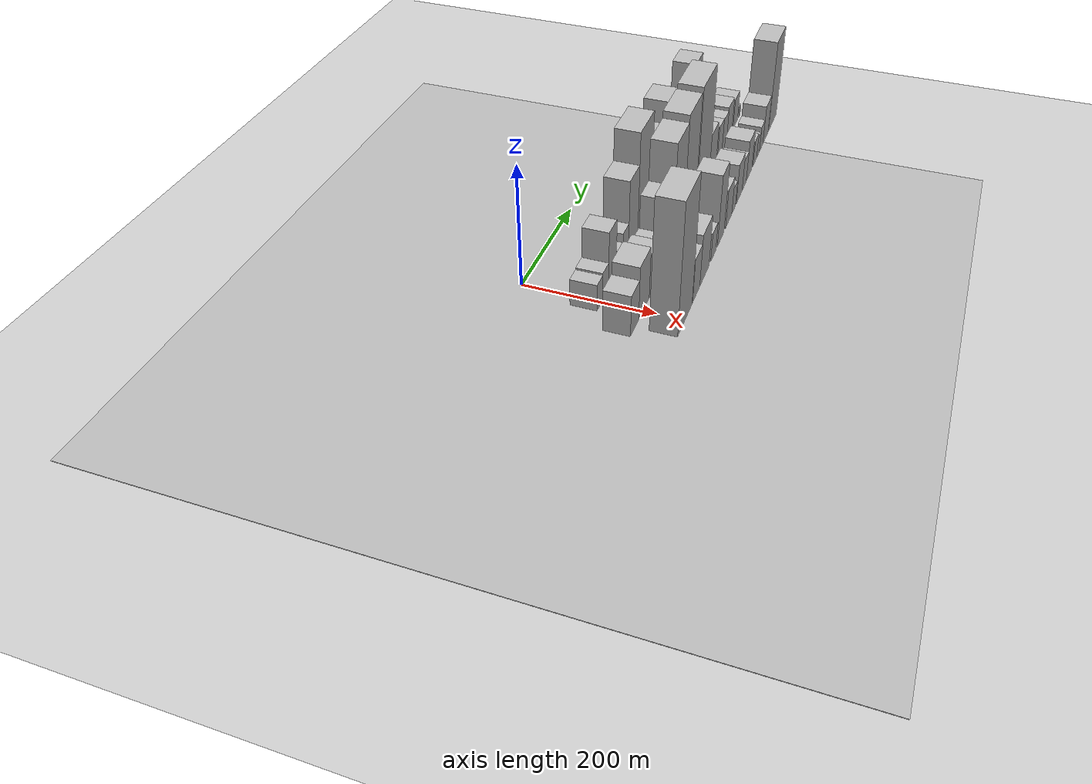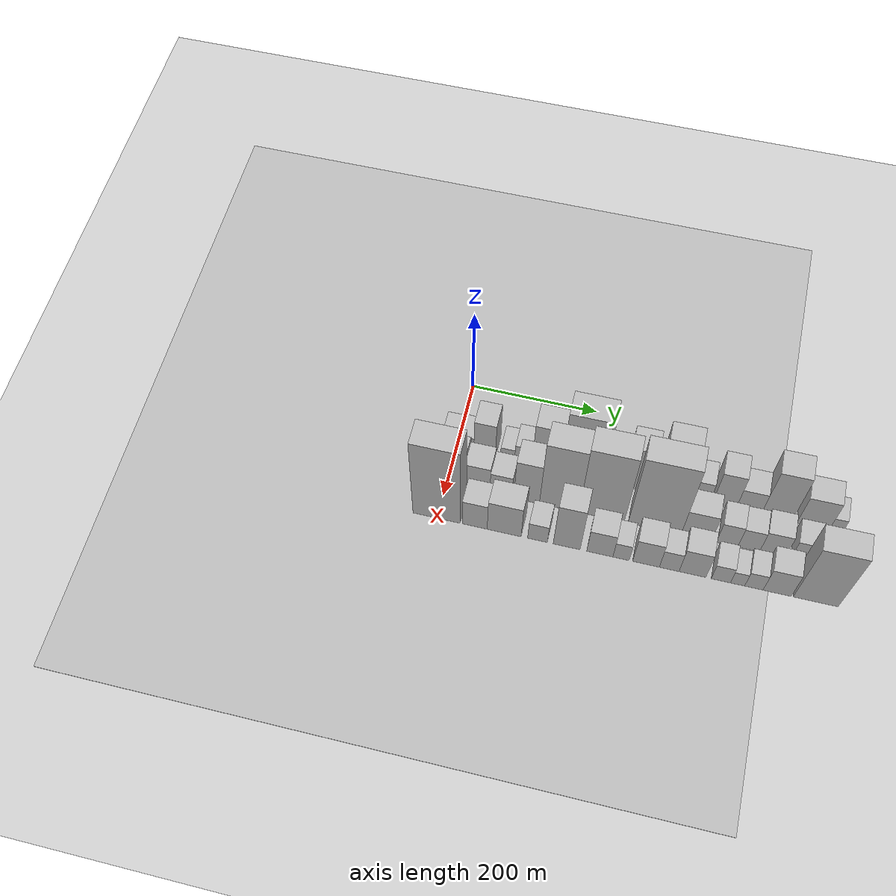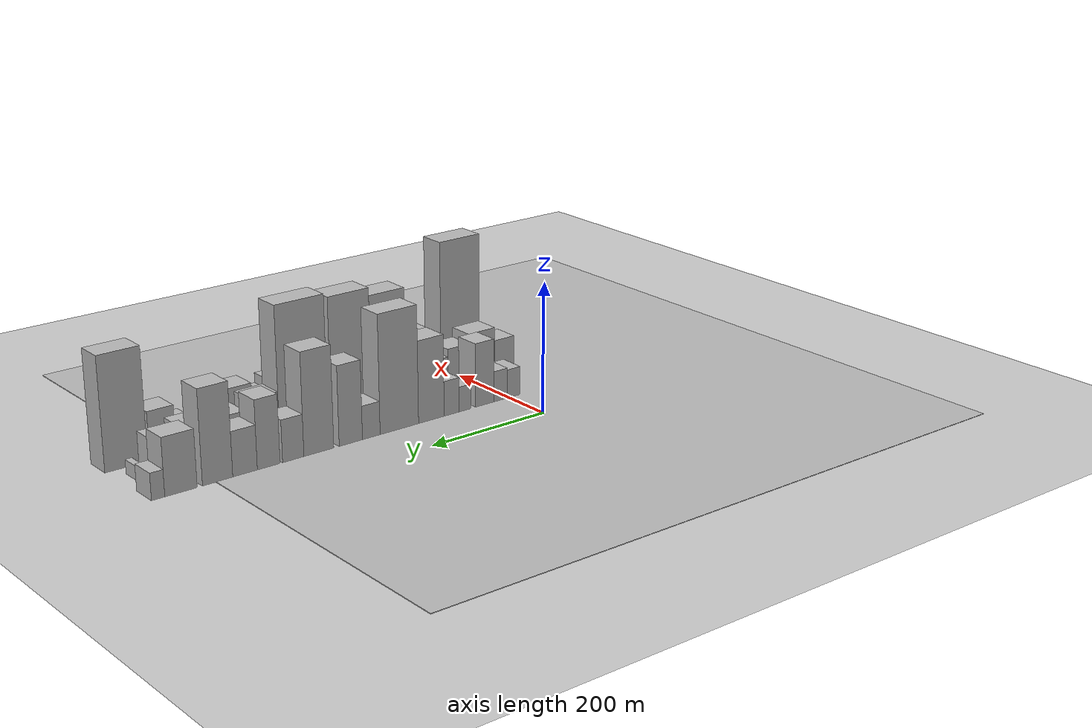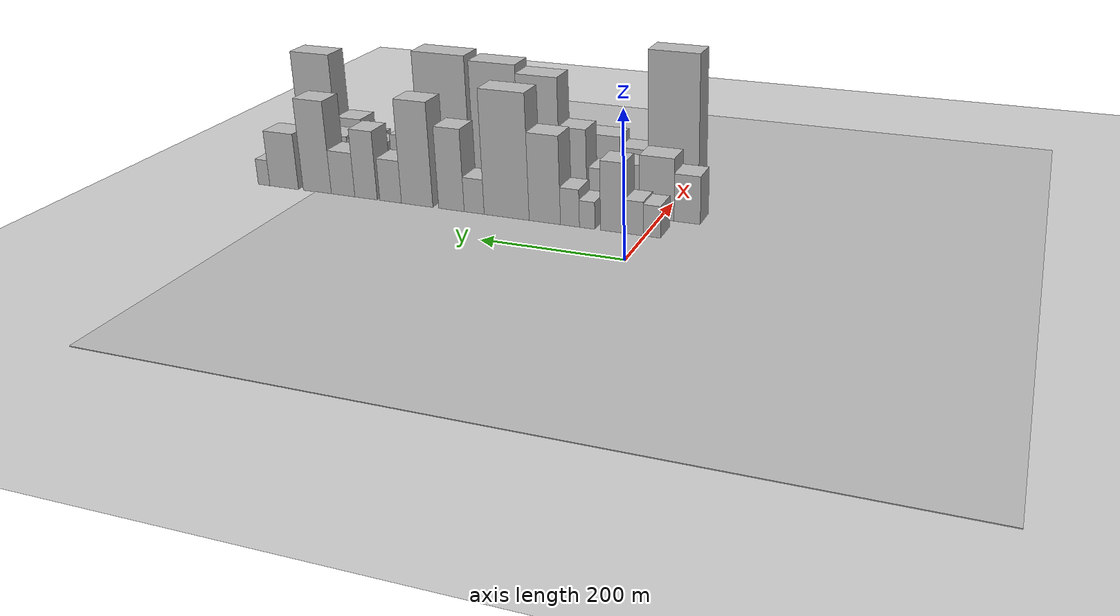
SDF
<sdf version="1.6">
 <world name="default">
  <include><name>ground_plane_1</name><uri>model://HANNAS_ground_plane</uri></include>
  <include>
   <name>ground_plane_2</name>
   <uri>model://HANNAS_ground_plane</uri>
   <pose>100 0 0  0 0 0</pose>
  </include>
  <model name="building_17">
   <static>1</static>
   <pose>100.0000 -9.2193 0 0.000000 0.000000 0.000000</pose>
   <link name="link">
    <pose>0 0 22.50 0 0 0</pose>
    <collision name="collision"><geometry><box><size>40.0000 24.1911 45.0000</size></box></geometry></collision>
    <visual name="visual">
     <cast_shadows>0</cast_shadows>
     <geometry><box><size>40.0000 24.1911 45.0000</size></box></geometry>
     <material>
      <script>
       <uri>model://HANNAS_wall/materials/scripts</uri>
       <uri>model://HANNAS_wall/materials/textures</uri>
       <name>vrc/HANNAS_wall</name>
      </script>
     </material>
    </visual>
   </link>
  </model>
  <model name="building_18">
   <static>1</static>
   <pose>100.0000 15.7469 0 0.000000 0.000000 0.000000</pose>
   <link name="link">
    <pose>0 0 24.00 0 0 0</pose>
    <collision name="collision"><geometry><box><size>40.0000 25.7412 48.0000</size></box></geometry></collision>
    <visual name="visual">
     <cast_shadows>0</cast_shadows>
     <geometry><box><size>40.0000 25.7412 48.0000</size></box></geometry>
     <material>
      <script>
       <uri>model://HANNAS_wall/materials/scripts</uri>
       <uri>model://HANNAS_wall/materials/textures</uri>
       <name>vrc/HANNAS_wall</name>
      </script>
     </material>
    </visual>
   </link>
  </model>
  <model name="building_19">
   <static>1</static>
   <pose>100.0000 45.7163 0 0.000000 0.000000 0.000000</pose>
   <link name="link">
    <pose>0 0 49.50 0 0 0</pose>
    <collision name="collision"><geometry><box><size>40.0000 34.1975 99.0000</size></box></geometry></collision>
    <visual name="visual">
     <cast_shadows>0</cast_shadows>
     <geometry><box><size>40.0000 34.1975 99.0000</size></box></geometry>
     <material>
      <script>
       <uri>model://HANNAS_wall/materials/scripts</uri>
       <uri>model://HANNAS_wall/materials/textures</uri>
       <name>vrc/HANNAS_wall</name>
      </script>
     </material>
    </visual>
   </link>
  </model>
  <model name="building_20">
   <static>1</static>
   <pose>100.0000 81.9478 0 0.000000 0.000000 0.000000</pose>
   <link name="link">
    <pose>0 0 19.50 0 0 0</pose>
    <collision name="collision"><geometry><box><size>40.0000 22.2656 39.0000</size></box></geometry></collision>
    <visual name="visual">
     <cast_shadows>0</cast_shadows>
     <geometry><box><size>40.0000 22.2656 39.0000</size></box></geometry>
     <material>
      <script>
       <uri>model://HANNAS_wall/materials/scripts</uri>
       <uri>model://HANNAS_wall/materials/textures</uri>
       <name>vrc/HANNAS_wall</name>
      </script>
     </material>
    </visual>
   </link>
  </model>
  <model name="building_21">
   <static>1</static>
   <pose>100.0000 106.7614 0 0.000000 0.000000 0.000000</pose>
   <link name="link">
    <pose>0 0 27.00 0 0 0</pose>
    <collision name="collision"><geometry><box><size>40.0000 27.3615 54.0000</size></box></geometry></collision>
    <visual name="visual">
     <cast_shadows>0</cast_shadows>
     <geometry><box><size>40.0000 27.3615 54.0000</size></box></geometry>
     <material>
      <script>
       <uri>model://HANNAS_wall/materials/scripts</uri>
       <uri>model://HANNAS_wall/materials/textures</uri>
       <name>vrc/HANNAS_wall</name>
      </script>
     </material>
    </visual>
   </link>
  </model>
  <model name="building_22">
   <static>1</static>
   <pose>100.0000 143.3555 0 0.000000 0.000000 0.000000</pose>
   <link name="link">
    <pose>0 0 63.00 0 0 0</pose>
    <collision name="collision"><geometry><box><size>40.0000 45.8266 126.0000</size></box></geometry></collision>
    <visual name="visual">
     <cast_shadows>0</cast_shadows>
     <geometry><box><size>40.0000 45.8266 126.0000</size></box></geometry>
     <material>
      <script>
       <uri>model://HANNAS_wall/materials/scripts</uri>
       <uri>model://HANNAS_wall/materials/textures</uri>
       <name>vrc/HANNAS_wall</name>
      </script>
     </material>
    </visual>
   </link>
  </model>
  <model name="building_23">
   <static>1</static>
   <pose>100.0000 199.9221 0 0.000000 0.000000 0.000000</pose>
   <link name="link">
    <pose>0 0 90.00 0 0 0</pose>
    <collision name="collision"><geometry><box><size>40.0000 67.3065 180.0000</size></box></geometry></collision>
    <visual name="visual">
     <cast_shadows>0</cast_shadows>
     <geometry><box><size>40.0000 67.3065 180.0000</size></box></geometry>
     <material>
      <script>
       <uri>model://HANNAS_wall/materials/scripts</uri>
       <uri>model://HANNAS_wall/materials/textures</uri>
       <name>vrc/HANNAS_wall</name>
      </script>
     </material>
    </visual>
   </link>
  </model>
  <model name="building_24">
   <static>1</static>
   <pose>100.0000 248.7436 0 0.000000 0.000000 0.000000</pose>
   <link name="link">
    <pose>0 0 25.50 0 0 0</pose>
    <collision name="collision"><geometry><box><size>40.0000 30.3366 51.0000</size></box></geometry></collision>
    <visual name="visual">
     <cast_shadows>0</cast_shadows>
     <geometry><box><size>40.0000 30.3366 51.0000</size></box></geometry>
     <material>
      <script>
       <uri>model://HANNAS_wall/materials/scripts</uri>
       <uri>model://HANNAS_wall/materials/textures</uri>
       <name>vrc/HANNAS_wall</name>
      </script>
     </material>
    </visual>
   </link>
  </model>
  <model name="building_25">
   <static>1</static>
   <pose>100.0000 283.5443 0 0.000000 0.000000 0.000000</pose>
   <link name="link">
    <pose>0 0 60.00 0 0 0</pose>
    <collision name="collision"><geometry><box><size>40.0000 39.2648 120.0000</size></box></geometry></collision>
    <visual name="visual">
     <cast_shadows>0</cast_shadows>
     <geometry><box><size>40.0000 39.2648 120.0000</size></box></geometry>
     <material>
      <script>
       <uri>model://HANNAS_wall/materials/scripts</uri>
       <uri>model://HANNAS_wall/materials/textures</uri>
       <name>vrc/HANNAS_wall</name>
      </script>
     </material>
    </visual>
   </link>
  </model>
  <model name="building_26">
   <static>1</static>
   <pose>100.0000 336.8091 0 0.000000 0.000000 0.000000</pose>
   <link name="link">
    <pose>0 0 76.50 0 0 0</pose>
    <collision name="collision"><geometry><box><size>40.0000 49.2648 153.0000</size></box></geometry></collision>
    <visual name="visual">
     <cast_shadows>0</cast_shadows>
     <geometry><box><size>40.0000 49.2648 153.0000</size></box></geometry>
     <material>
      <script>
       <uri>model://HANNAS_wall/materials/scripts</uri>
       <uri>model://HANNAS_wall/materials/textures</uri>
       <name>vrc/HANNAS_wall</name>
      </script>
     </material>
    </visual>
   </link>
  </model>
  <model name="building_27">
   <static>1</static>
   <pose>100.0000 378.6815 0 0.000000 0.000000 0.000000</pose>
   <link name="link">
    <pose>0 0 31.50 0 0 0</pose>
    <collision name="collision"><geometry><box><size>40.0000 34.4800 63.0000</size></box></geometry></collision>
    <visual name="visual">
     <cast_shadows>0</cast_shadows>
     <geometry><box><size>40.0000 34.4800 63.0000</size></box></geometry>
     <material>
      <script>
       <uri>model://HANNAS_wall/materials/scripts</uri>
       <uri>model://HANNAS_wall/materials/textures</uri>
       <name>vrc/HANNAS_wall</name>
      </script>
     </material>
    </visual>
   </link>
  </model>
  <model name="building_28">
   <static>1</static>
   <pose>100.0000 417.9894 0 0.000000 0.000000 0.000000</pose>
   <link name="link">
    <pose>0 0 51.00 0 0 0</pose>
    <collision name="collision"><geometry><box><size>40.0000 36.1358 102.0000</size></box></geometry></collision>
    <visual name="visual">
     <cast_shadows>0</cast_shadows>
     <geometry><box><size>40.0000 36.1358 102.0000</size></box></geometry>
     <material>
      <script>
       <uri>model://HANNAS_wall/materials/scripts</uri>
       <uri>model://HANNAS_wall/materials/textures</uri>
       <name>vrc/HANNAS_wall</name>
      </script>
     </material>
    </visual>
   </link>
  </model>
  <model name="building_29">
   <static>1</static>
   <pose>100.0000 455.2565 0 0.000000 0.000000 0.000000</pose>
   <link name="link">
    <pose>0 0 33.00 0 0 0</pose>
    <collision name="collision"><geometry><box><size>40.0000 38.3985 66.0000</size></box></geometry></collision>
    <visual name="visual">
     <cast_shadows>0</cast_shadows>
     <geometry><box><size>40.0000 38.3985 66.0000</size></box></geometry>
     <material>
      <script>
       <uri>model://HANNAS_wall/materials/scripts</uri>
       <uri>model://HANNAS_wall/materials/textures</uri>
       <name>vrc/HANNAS_wall</name>
      </script>
     </material>
    </visual>
   </link>
  </model>
  <model name="building_30">
   <static>1</static>
   <pose>100.0000 497.6974 0 0.000000 0.000000 0.000000</pose>
   <link name="link">
    <pose>0 0 69.00 0 0 0</pose>
    <collision name="collision"><geometry><box><size>40.0000 46.4833 138.0000</size></box></geometry></collision>
    <visual name="visual">
     <cast_shadows>0</cast_shadows>
     <geometry><box><size>40.0000 46.4833 138.0000</size></box></geometry>
     <material>
      <script>
       <uri>model://HANNAS_wall/materials/scripts</uri>
       <uri>model://HANNAS_wall/materials/textures</uri>
       <name>vrc/HANNAS_wall</name>
      </script>
     </material>
    </visual>
   </link>
  </model>
  <model name="building_31">
   <static>1</static>
   <pose>100.0000 553.1227 0 0.000000 0.000000 0.000000</pose>
   <link name="link">
    <pose>0 0 42.00 0 0 0</pose>
    <collision name="collision"><geometry><box><size>40.0000 48.3673 84.0000</size></box></geometry></collision>
    <visual name="visual">
     <cast_shadows>0</cast_shadows>
     <geometry><box><size>40.0000 48.3673 84.0000</size></box></geometry>
     <material>
      <script>
       <uri>model://HANNAS_wall/materials/scripts</uri>
       <uri>model://HANNAS_wall/materials/textures</uri>
       <name>vrc/HANNAS_wall</name>
      </script>
     </material>
    </visual>
   </link>
  </model>
  <model name="building_32">
   <static>1</static>
   <pose>100.0000 587.1421 0 0.000000 0.000000 0.000000</pose>
   <link name="link">
    <pose>0 0 19.50 0 0 0</pose>
    <collision name="collision"><geometry><box><size>40.0000 19.6715 39.0000</size></box></geometry></collision>
    <visual name="visual">
     <cast_shadows>0</cast_shadows>
     <geometry><box><size>40.0000 19.6715 39.0000</size></box></geometry>
     <material>
      <script>
       <uri>model://HANNAS_wall/materials/scripts</uri>
       <uri>model://HANNAS_wall/materials/textures</uri>
       <name>vrc/HANNAS_wall</name>
      </script>
     </material>
    </visual>
   </link>
  </model>
  <model name="building_46">
   <static>1</static>
   <pose>160.0000 -39.2891 0 0.000000 0.000000 0.000000</pose>
   <link name="link">
    <pose>0 0 34.50 0 0 0</pose>
    <collision name="collision"><geometry><box><size>40.0000 36.9468 69.0000</size></box></geometry></collision>
    <visual name="visual">
     <cast_shadows>0</cast_shadows>
     <geometry><box><size>40.0000 36.9468 69.0000</size></box></geometry>
     <material>
      <script>
       <uri>model://HANNAS_wall/materials/scripts</uri>
       <uri>model://HANNAS_wall/materials/textures</uri>
       <name>vrc/HANNAS_wall</name>
      </script>
     </material>
    </visual>
   </link>
  </model>
  <model name="building_47">
   <static>1</static>
   <pose>160.0000 3.8355 0 0.000000 0.000000 0.000000</pose>
   <link name="link">
    <pose>0 0 45.00 0 0 0</pose>
    <collision name="collision"><geometry><box><size>40.0000 49.3026 90.0000</size></box></geometry></collision>
    <visual name="visual">
     <cast_shadows>0</cast_shadows>
     <geometry><box><size>40.0000 49.3026 90.0000</size></box></geometry>
     <material>
      <script>
       <uri>model://HANNAS_wall/materials/scripts</uri>
       <uri>model://HANNAS_wall/materials/textures</uri>
       <name>vrc/HANNAS_wall</name>
      </script>
     </material>
    </visual>
   </link>
  </model>
  <model name="building_48">
   <static>1</static>
   <pose>160.0000 48.2346 0 0.000000 0.000000 0.000000</pose>
   <link name="link">
    <pose>0 0 37.50 0 0 0</pose>
    <collision name="collision"><geometry><box><size>40.0000 39.4956 75.0000</size></box></geometry></collision>
    <visual name="visual">
     <cast_shadows>0</cast_shadows>
     <geometry><box><size>40.0000 39.4956 75.0000</size></box></geometry>
     <material>
      <script>
       <uri>model://HANNAS_wall/materials/scripts</uri>
       <uri>model://HANNAS_wall/materials/textures</uri>
       <name>vrc/HANNAS_wall</name>
      </script>
     </material>
    </visual>
   </link>
  </model>
  <model name="building_49">
   <static>1</static>
   <pose>160.0000 85.1617 0 0.000000 0.000000 0.000000</pose>
   <link name="link">
    <pose>0 0 31.50 0 0 0</pose>
    <collision name="collision"><geometry><box><size>40.0000 34.3585 63.0000</size></box></geometry></collision>
    <visual name="visual">
     <cast_shadows>0</cast_shadows>
     <geometry><box><size>40.0000 34.3585 63.0000</size></box></geometry>
     <material>
      <script>
       <uri>model://HANNAS_wall/materials/scripts</uri>
       <uri>model://HANNAS_wall/materials/textures</uri>
       <name>vrc/HANNAS_wall</name>
      </script>
     </material>
    </visual>
   </link>
  </model>
  <model name="building_50">
   <static>1</static>
   <pose>160.0000 125.2696 0 0.000000 0.000000 0.000000</pose>
   <link name="link">
    <pose>0 0 58.50 0 0 0</pose>
    <collision name="collision"><geometry><box><size>40.0000 39.8573 117.0000</size></box></geometry></collision>
    <visual name="visual">
     <cast_shadows>0</cast_shadows>
     <geometry><box><size>40.0000 39.8573 117.0000</size></box></geometry>
     <material>
      <script>
       <uri>model://HANNAS_wall/materials/scripts</uri>
       <uri>model://HANNAS_wall/materials/textures</uri>
       <name>vrc/HANNAS_wall</name>
      </script>
     </material>
    </visual>
   </link>
  </model>
  <model name="building_51">
   <static>1</static>
   <pose>160.0000 175.7188 0 0.000000 0.000000 0.000000</pose>
   <link name="link">
    <pose>0 0 93.00 0 0 0</pose>
    <collision name="collision"><geometry><box><size>40.0000 61.0412 186.0000</size></box></geometry></collision>
    <visual name="visual">
     <cast_shadows>0</cast_shadows>
     <geometry><box><size>40.0000 61.0412 186.0000</size></box></geometry>
     <material>
      <script>
       <uri>model://HANNAS_wall/materials/scripts</uri>
       <uri>model://HANNAS_wall/materials/textures</uri>
       <name>vrc/HANNAS_wall</name>
      </script>
     </material>
    </visual>
   </link>
  </model>
  <model name="building_52">
   <static>1</static>
   <pose>160.0000 240.9977 0 0.000000 0.000000 0.000000</pose>
   <link name="link">
    <pose>0 0 99.00 0 0 0</pose>
    <collision name="collision"><geometry><box><size>40.0000 69.5166 198.0000</size></box></geometry></collision>
    <visual name="visual">
     <cast_shadows>0</cast_shadows>
     <geometry><box><size>40.0000 69.5166 198.0000</size></box></geometry>
     <material>
      <script>
       <uri>model://HANNAS_wall/materials/scripts</uri>
       <uri>model://HANNAS_wall/materials/textures</uri>
       <name>vrc/HANNAS_wall</name>
      </script>
     </material>
    </visual>
   </link>
  </model>
  <model name="building_53">
   <static>1</static>
   <pose>160.0000 322.0239 0 0.000000 0.000000 0.000000</pose>
   <link name="link">
    <pose>0 0 102.00 0 0 0</pose>
    <collision name="collision"><geometry><box><size>40.0000 80.5359 204.0000</size></box></geometry></collision>
    <visual name="visual">
     <cast_shadows>0</cast_shadows>
     <geometry><box><size>40.0000 80.5359 204.0000</size></box></geometry>
     <material>
      <script>
       <uri>model://HANNAS_wall/materials/scripts</uri>
       <uri>model://HANNAS_wall/materials/textures</uri>
       <name>vrc/HANNAS_wall</name>
      </script>
     </material>
    </visual>
   </link>
  </model>
  <model name="building_54">
   <static>1</static>
   <pose>160.0000 385.2030 0 0.000000 0.000000 0.000000</pose>
   <link name="link">
    <pose>0 0 39.00 0 0 0</pose>
    <collision name="collision"><geometry><box><size>40.0000 45.8222 78.0000</size></box></geometry></collision>
    <visual name="visual">
     <cast_shadows>0</cast_shadows>
     <geometry><box><size>40.0000 45.8222 78.0000</size></box></geometry>
     <material>
      <script>
       <uri>model://HANNAS_wall/materials/scripts</uri>
       <uri>model://HANNAS_wall/materials/textures</uri>
       <name>vrc/HANNAS_wall</name>
      </script>
     </material>
    </visual>
   </link>
  </model>
  <model name="building_55">
   <static>1</static>
   <pose>160.0000 411.7344 0 0.000000 0.000000 0.000000</pose>
   <link name="link">
    <pose>0 0 9.00 0 0 0</pose>
    <collision name="collision"><geometry><box><size>40.0000 7.2406 18.0000</size></box></geometry></collision>
    <visual name="visual">
     <cast_shadows>0</cast_shadows>
     <geometry><box><size>40.0000 7.2406 18.0000</size></box></geometry>
     <material>
      <script>
       <uri>model://HANNAS_wall/materials/scripts</uri>
       <uri>model://HANNAS_wall/materials/textures</uri>
       <name>vrc/HANNAS_wall</name>
      </script>
     </material>
    </visual>
   </link>
  </model>
  <model name="building_56">
   <static>1</static>
   <pose>160.0000 431.4863 0 0.000000 0.000000 0.000000</pose>
   <link name="link">
    <pose>0 0 31.50 0 0 0</pose>
    <collision name="collision"><geometry><box><size>40.0000 32.2633 63.0000</size></box></geometry></collision>
    <visual name="visual">
     <cast_shadows>0</cast_shadows>
     <geometry><box><size>40.0000 32.2633 63.0000</size></box></geometry>
     <material>
      <script>
       <uri>model://HANNAS_wall/materials/scripts</uri>
       <uri>model://HANNAS_wall/materials/textures</uri>
       <name>vrc/HANNAS_wall</name>
      </script>
     </material>
    </visual>
   </link>
  </model>
  <model name="building_57">
   <static>1</static>
   <pose>160.0000 463.8611 0 0.000000 0.000000 0.000000</pose>
   <link name="link">
    <pose>0 0 30.00 0 0 0</pose>
    <collision name="collision"><geometry><box><size>40.0000 32.4863 60.0000</size></box></geometry></collision>
    <visual name="visual">
     <cast_shadows>0</cast_shadows>
     <geometry><box><size>40.0000 32.4863 60.0000</size></box></geometry>
     <material>
      <script>
       <uri>model://HANNAS_wall/materials/scripts</uri>
       <uri>model://HANNAS_wall/materials/textures</uri>
       <name>vrc/HANNAS_wall</name>
      </script>
     </material>
    </visual>
   </link>
  </model>
  <model name="building_58">
   <static>1</static>
   <pose>160.0000 499.2149 0 0.000000 0.000000 0.000000</pose>
   <link name="link">
    <pose>0 0 33.00 0 0 0</pose>
    <collision name="collision"><geometry><box><size>40.0000 38.2213 66.0000</size></box></geometry></collision>
    <visual name="visual">
     <cast_shadows>0</cast_shadows>
     <geometry><box><size>40.0000 38.2213 66.0000</size></box></geometry>
     <material>
      <script>
       <uri>model://HANNAS_wall/materials/scripts</uri>
       <uri>model://HANNAS_wall/materials/textures</uri>
       <name>vrc/HANNAS_wall</name>
      </script>
     </material>
    </visual>
   </link>
  </model>
  <model name="building_59">
   <static>1</static>
   <pose>160.0000 543.3812 0 0.000000 0.000000 0.000000</pose>
   <link name="link">
    <pose>0 0 28.50 0 0 0</pose>
    <collision name="collision"><geometry><box><size>40.0000 34.1113 57.0000</size></box></geometry></collision>
    <visual name="visual">
     <cast_shadows>0</cast_shadows>
     <geometry><box><size>40.0000 34.1113 57.0000</size></box></geometry>
     <material>
      <script>
       <uri>model://HANNAS_wall/materials/scripts</uri>
       <uri>model://HANNAS_wall/materials/textures</uri>
       <name>vrc/HANNAS_wall</name>
      </script>
     </material>
    </visual>
   </link>
  </model>
  <model name="building_60">
   <static>1</static>
   <pose>160.0000 575.5110 0 0.000000 0.000000 0.000000</pose>
   <link name="link">
    <pose>0 0 10.50 0 0 0</pose>
    <collision name="collision"><geometry><box><size>40.0000 10.1483 21.0000</size></box></geometry></collision>
    <visual name="visual">
     <cast_shadows>0</cast_shadows>
     <geometry><box><size>40.0000 10.1483 21.0000</size></box></geometry>
     <material>
      <script>
       <uri>model://HANNAS_wall/materials/scripts</uri>
       <uri>model://HANNAS_wall/materials/textures</uri>
       <name>vrc/HANNAS_wall</name>
      </script>
     </material>
    </visual>
   </link>
  </model>
  <model name="building_79">
   <static>1</static>
   <pose>220.0000 -0.7405 0 0.000000 0.000000 0.000000</pose>
   <link name="link">
    <pose>0 0 109.50 0 0 0</pose>
    <collision name="collision"><geometry><box><size>40.0000 73.5130 219.0000</size></box></geometry></collision>
    <visual name="visual">
     <cast_shadows>0</cast_shadows>
     <geometry><box><size>40.0000 73.5130 219.0000</size></box></geometry>
     <material>
      <script>
       <uri>model://HANNAS_wall/materials/scripts</uri>
       <uri>model://HANNAS_wall/materials/textures</uri>
       <name>vrc/HANNAS_wall</name>
      </script>
     </material>
    </visual>
   </link>
  </model>
  <model name="building_80">
   <static>1</static>
   <pose>220.0000 58.3524 0 0.000000 0.000000 0.000000</pose>
   <link name="link">
    <pose>0 0 37.50 0 0 0</pose>
    <collision name="collision"><geometry><box><size>40.0000 38.6726 75.0000</size></box></geometry></collision>
    <visual name="visual">
     <cast_shadows>0</cast_shadows>
     <geometry><box><size>40.0000 38.6726 75.0000</size></box></geometry>
     <material>
      <script>
       <uri>model://HANNAS_wall/materials/scripts</uri>
       <uri>model://HANNAS_wall/materials/textures</uri>
       <name>vrc/HANNAS_wall</name>
      </script>
     </material>
    </visual>
   </link>
  </model>
  <model name="building_81">
   <static>1</static>
   <pose>220.0000 103.7330 0 0.000000 0.000000 0.000000</pose>
   <link name="link">
    <pose>0 0 45.00 0 0 0</pose>
    <collision name="collision"><geometry><box><size>40.0000 52.0886 90.0000</size></box></geometry></collision>
    <visual name="visual">
     <cast_shadows>0</cast_shadows>
     <geometry><box><size>40.0000 52.0886 90.0000</size></box></geometry>
     <material>
      <script>
       <uri>model://HANNAS_wall/materials/scripts</uri>
       <uri>model://HANNAS_wall/materials/textures</uri>
       <name>vrc/HANNAS_wall</name>
      </script>
     </material>
    </visual>
   </link>
  </model>
  <model name="building_82">
   <static>1</static>
   <pose>220.0000 154.8473 0 0.000000 0.000000 0.000000</pose>
   <link name="link">
    <pose>0 0 25.50 0 0 0</pose>
    <collision name="collision"><geometry><box><size>40.0000 30.1401 51.0000</size></box></geometry></collision>
    <visual name="visual">
     <cast_shadows>0</cast_shadows>
     <geometry><box><size>40.0000 30.1401 51.0000</size></box></geometry>
     <material>
      <script>
       <uri>model://HANNAS_wall/materials/scripts</uri>
       <uri>model://HANNAS_wall/materials/textures</uri>
       <name>vrc/HANNAS_wall</name>
      </script>
     </material>
    </visual>
   </link>
  </model>
  <model name="building_83">
   <static>1</static>
   <pose>220.0000 199.3550 0 0.000000 0.000000 0.000000</pose>
   <link name="link">
    <pose>0 0 63.00 0 0 0</pose>
    <collision name="collision"><geometry><box><size>40.0000 40.8753 126.0000</size></box></geometry></collision>
    <visual name="visual">
     <cast_shadows>0</cast_shadows>
     <geometry><box><size>40.0000 40.8753 126.0000</size></box></geometry>
     <material>
      <script>
       <uri>model://HANNAS_wall/materials/scripts</uri>
       <uri>model://HANNAS_wall/materials/textures</uri>
       <name>vrc/HANNAS_wall</name>
      </script>
     </material>
    </visual>
   </link>
  </model>
  <model name="building_84">
   <static>1</static>
   <pose>220.0000 249.5662 0 0.000000 0.000000 0.000000</pose>
   <link name="link">
    <pose>0 0 34.50 0 0 0</pose>
    <collision name="collision"><geometry><box><size>40.0000 39.5471 69.0000</size></box></geometry></collision>
    <visual name="visual">
     <cast_shadows>0</cast_shadows>
     <geometry><box><size>40.0000 39.5471 69.0000</size></box></geometry>
     <material>
      <script>
       <uri>model://HANNAS_wall/materials/scripts</uri>
       <uri>model://HANNAS_wall/materials/textures</uri>
       <name>vrc/HANNAS_wall</name>
      </script>
     </material>
    </visual>
   </link>
  </model>
  <model name="building_85">
   <static>1</static>
   <pose>220.0000 281.6485 0 0.000000 0.000000 0.000000</pose>
   <link name="link">
    <pose>0 0 24.00 0 0 0</pose>
    <collision name="collision"><geometry><box><size>40.0000 24.6175 48.0000</size></box></geometry></collision>
    <visual name="visual">
     <cast_shadows>0</cast_shadows>
     <geometry><box><size>40.0000 24.6175 48.0000</size></box></geometry>
     <material>
      <script>
       <uri>model://HANNAS_wall/materials/scripts</uri>
       <uri>model://HANNAS_wall/materials/textures</uri>
       <name>vrc/HANNAS_wall</name>
      </script>
     </material>
    </visual>
   </link>
  </model>
  <model name="building_86">
   <static>1</static>
   <pose>220.0000 318.9860 0 0.000000 0.000000 0.000000</pose>
   <link name="link">
    <pose>0 0 36.00 0 0 0</pose>
    <collision name="collision"><geometry><box><size>40.0000 40.0575 72.0000</size></box></geometry></collision>
    <visual name="visual">
     <cast_shadows>0</cast_shadows>
     <geometry><box><size>40.0000 40.0575 72.0000</size></box></geometry>
     <material>
      <script>
       <uri>model://HANNAS_wall/materials/scripts</uri>
       <uri>model://HANNAS_wall/materials/textures</uri>
       <name>vrc/HANNAS_wall</name>
      </script>
     </material>
    </visual>
   </link>
  </model>
  <model name="building_87">
   <static>1</static>
   <pose>220.0000 353.7144 0 0.000000 0.000000 0.000000</pose>
   <link name="link">
    <pose>0 0 28.50 0 0 0</pose>
    <collision name="collision"><geometry><box><size>40.0000 29.3993 57.0000</size></box></geometry></collision>
    <visual name="visual">
     <cast_shadows>0</cast_shadows>
     <geometry><box><size>40.0000 29.3993 57.0000</size></box></geometry>
     <material>
      <script>
       <uri>model://HANNAS_wall/materials/scripts</uri>
       <uri>model://HANNAS_wall/materials/textures</uri>
       <name>vrc/HANNAS_wall</name>
      </script>
     </material>
    </visual>
   </link>
  </model>
  <model name="building_88">
   <static>1</static>
   <pose>220.0000 388.3464 0 0.000000 0.000000 0.000000</pose>
   <link name="link">
    <pose>0 0 37.50 0 0 0</pose>
    <collision name="collision"><geometry><box><size>40.0000 39.8646 75.0000</size></box></geometry></collision>
    <visual name="visual">
     <cast_shadows>0</cast_shadows>
     <geometry><box><size>40.0000 39.8646 75.0000</size></box></geometry>
     <material>
      <script>
       <uri>model://HANNAS_wall/materials/scripts</uri>
       <uri>model://HANNAS_wall/materials/textures</uri>
       <name>vrc/HANNAS_wall</name>
      </script>
     </material>
    </visual>
   </link>
  </model>
  <model name="building_89">
   <static>1</static>
   <pose>220.0000 430.3805 0 0.000000 0.000000 0.000000</pose>
   <link name="link">
    <pose>0 0 24.00 0 0 0</pose>
    <collision name="collision"><geometry><box><size>40.0000 28.2036 48.0000</size></box></geometry></collision>
    <visual name="visual">
     <cast_shadows>0</cast_shadows>
     <geometry><box><size>40.0000 28.2036 48.0000</size></box></geometry>
     <material>
      <script>
       <uri>model://HANNAS_wall/materials/scripts</uri>
       <uri>model://HANNAS_wall/materials/textures</uri>
       <name>vrc/HANNAS_wall</name>
      </script>
     </material>
    </visual>
   </link>
  </model>
  <model name="building_90">
   <static>1</static>
   <pose>220.0000 455.0246 0 0.000000 0.000000 0.000000</pose>
   <link name="link">
    <pose>0 0 19.50 0 0 0</pose>
    <collision name="collision"><geometry><box><size>40.0000 21.0847 39.0000</size></box></geometry></collision>
    <visual name="visual">
     <cast_shadows>0</cast_shadows>
     <geometry><box><size>40.0000 21.0847 39.0000</size></box></geometry>
     <material>
      <script>
       <uri>model://HANNAS_wall/materials/scripts</uri>
       <uri>model://HANNAS_wall/materials/textures</uri>
       <name>vrc/HANNAS_wall</name>
      </script>
     </material>
    </visual>
   </link>
  </model>
  <model name="building_91">
   <static>1</static>
   <pose>220.0000 479.0398 0 0.000000 0.000000 0.000000</pose>
   <link name="link">
    <pose>0 0 24.00 0 0 0</pose>
    <collision name="collision"><geometry><box><size>40.0000 26.9456 48.0000</size></box></geometry></collision>
    <visual name="visual">
     <cast_shadows>0</cast_shadows>
     <geometry><box><size>40.0000 26.9456 48.0000</size></box></geometry>
     <material>
      <script>
       <uri>model://HANNAS_wall/materials/scripts</uri>
       <uri>model://HANNAS_wall/materials/textures</uri>
       <name>vrc/HANNAS_wall</name>
      </script>
     </material>
    </visual>
   </link>
  </model>
  <model name="building_92">
   <static>1</static>
   <pose>220.0000 513.1335 0 0.000000 0.000000 0.000000</pose>
   <link name="link">
    <pose>0 0 36.00 0 0 0</pose>
    <collision name="collision"><geometry><box><size>40.0000 41.2420 72.0000</size></box></geometry></collision>
    <visual name="visual">
     <cast_shadows>0</cast_shadows>
     <geometry><box><size>40.0000 41.2420 72.0000</size></box></geometry>
     <material>
      <script>
       <uri>model://HANNAS_wall/materials/scripts</uri>
       <uri>model://HANNAS_wall/materials/textures</uri>
       <name>vrc/HANNAS_wall</name>
      </script>
     </material>
    </visual>
   </link>
  </model>
  <model name="building_93">
   <static>1</static>
   <pose>220.0000 569.3147 0 0.000000 0.000000 0.000000</pose>
   <link name="link">
    <pose>0 0 84.00 0 0 0</pose>
    <collision name="collision"><geometry><box><size>40.0000 65.1204 168.0000</size></box></geometry></collision>
    <visual name="visual">
     <cast_shadows>0</cast_shadows>
     <geometry><box><size>40.0000 65.1204 168.0000</size></box></geometry>
     <material>
      <script>
       <uri>model://HANNAS_wall/materials/scripts</uri>
       <uri>model://HANNAS_wall/materials/textures</uri>
       <name>vrc/HANNAS_wall</name>
      </script>
     </material>
    </visual>
   </link>
  </model>
 </world>
</sdf>
